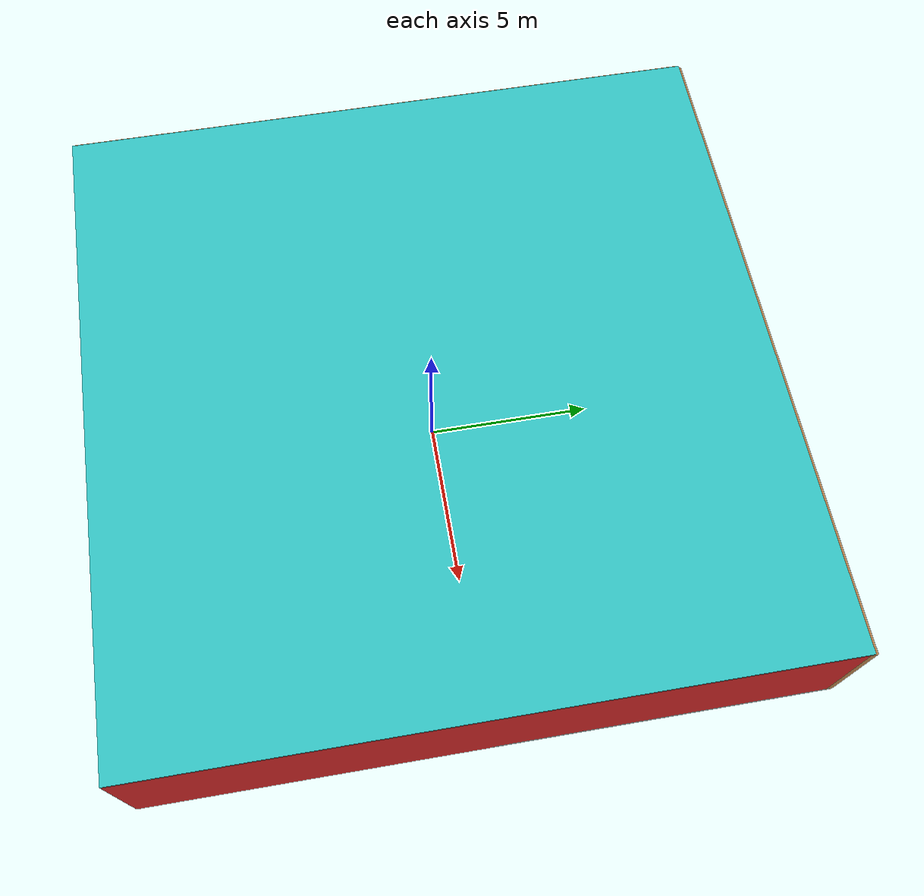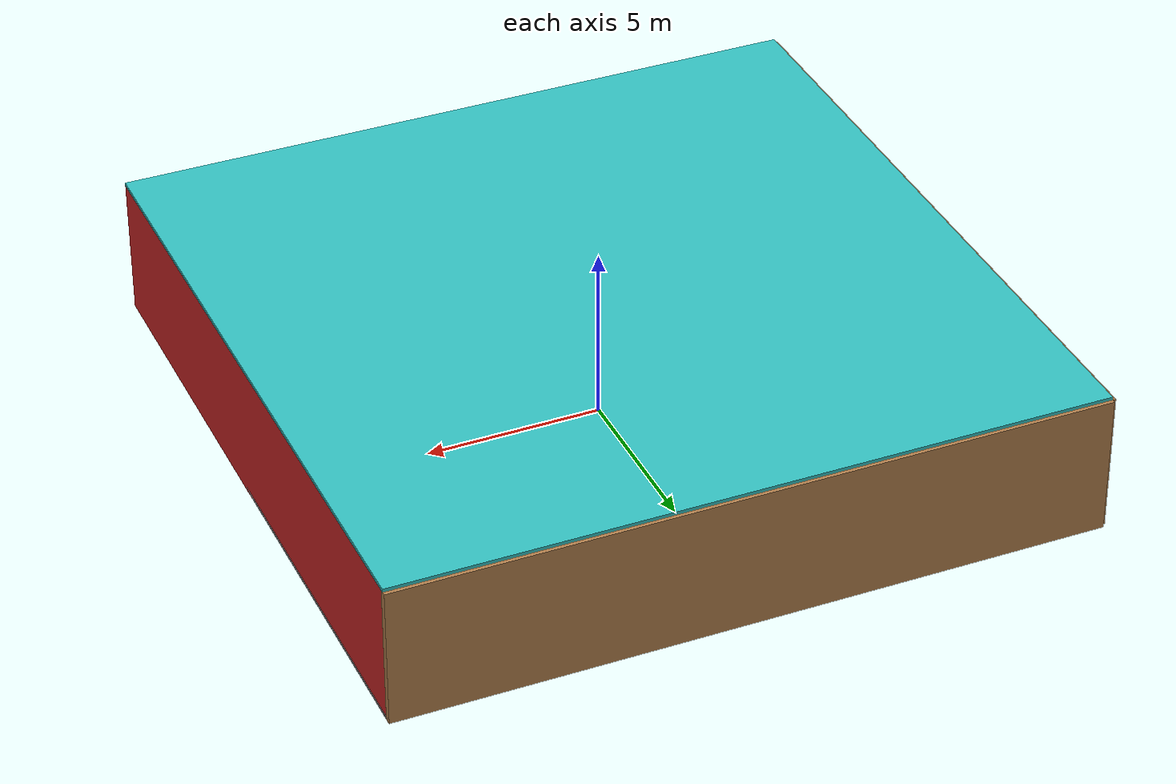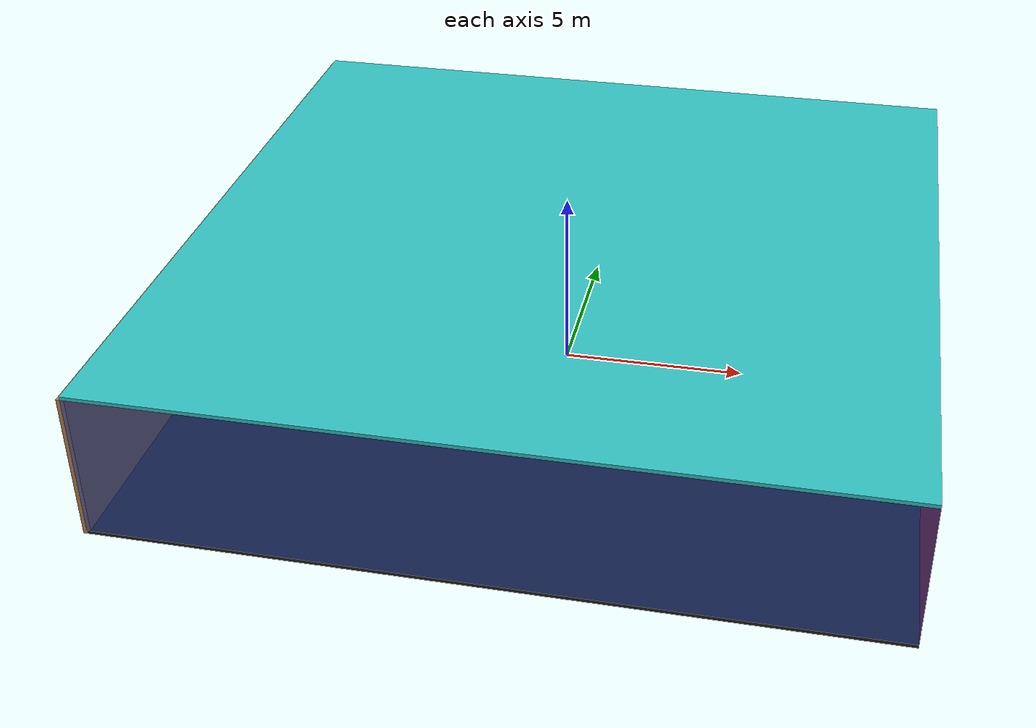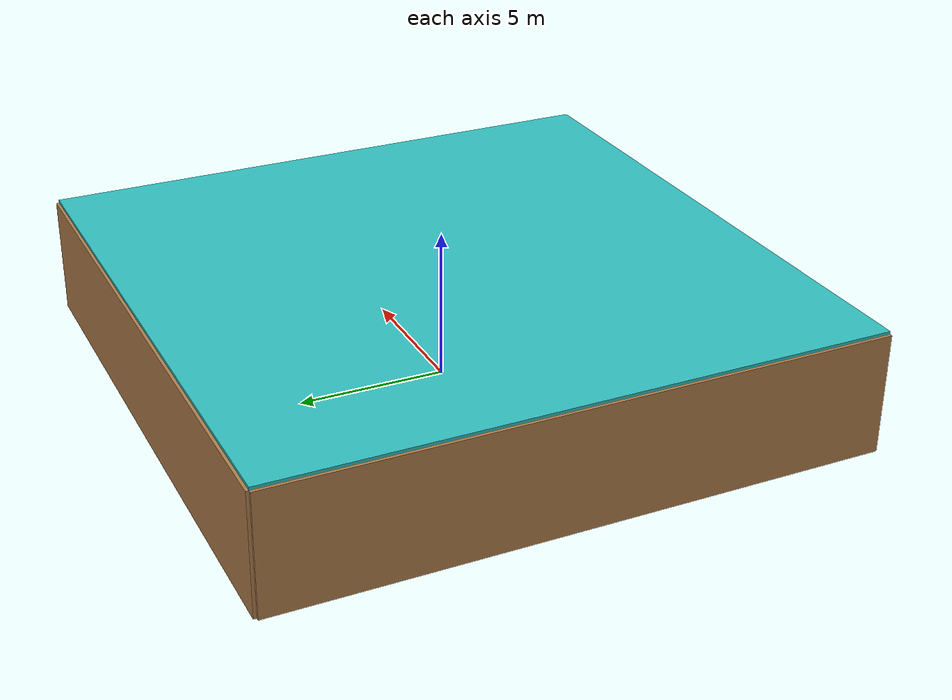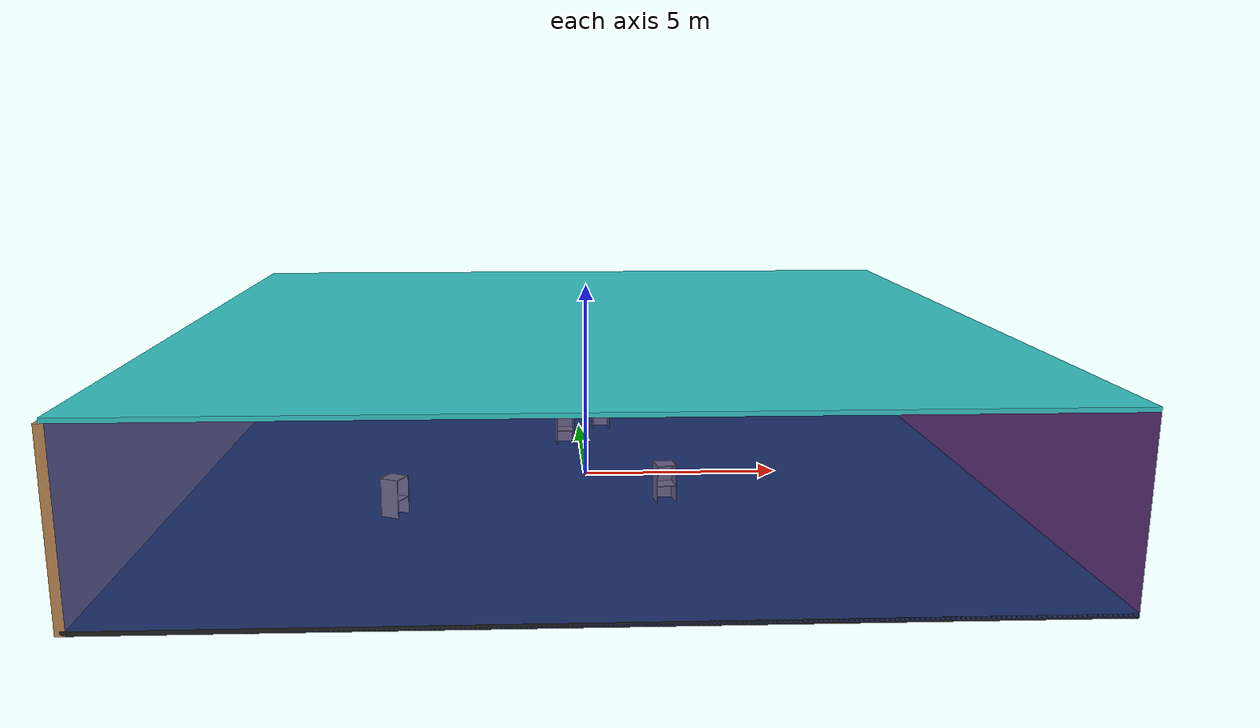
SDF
<sdf version="1.4">
 <world name="default">
  <physics type="ode">
   <max_step_size>0.001</max_step_size>
   <real_time_factor>1</real_time_factor>
   <real_time_update_rate>1000</real_time_update_rate>
   <gravity>0 0 -9.8</gravity>
  </physics>
  <scene><ambient>0.4 0.4 0.4 1</ambient><background>0.7 0.7 0.7 1</background><shadows>1</shadows></scene>
  <model name="Surrounding">
   <static>1</static>
   <link name="Ceiling">
    <collision name="Ceiling_Collision"><geometry><box><size>20 20 0.1</size></box></geometry></collision>
    <visual name="Ceiling_Visual">
     <geometry><box><size>20 20 0.1</size></box></geometry>
     <material>
      <script>
       <uri>file://media/materials/scripts/gazebo.material</uri>
       <name>Gazebo/TurquoiseGlowOutline</name>
      </script>
     </material>
    </visual>
    <pose>0 0 4.05 0 0 0</pose>
   </link>
   <link name="Wall_South">
    <collision name="Wall_South_Collision">
     <geometry><box><size>20 0 4</size></box></geometry>
     <pose>0 0 2 0 -0 0</pose>
    </collision>
    <visual name="Wall_South_Visual">
     <pose>0 0 2 0 -0 0</pose>
     <geometry><box><size>20 0 4</size></box></geometry>
     <material>
      <script><uri>file://media/materials/scripts/gazebo.material</uri><name>Gazebo/BlueTransparent</name></script>
     </material>
    </visual>
    <velocity_decay><linear>0</linear><angular>0</angular></velocity_decay>
    <pose>0 -10 0 0 -0 0</pose>
   </link>
   <link name="Wall_East">
    <collision name="Wall_21_Collision">
     <geometry><box><size>20 0 4</size></box></geometry>
     <pose>0 0 2 0 -0 0</pose>
    </collision>
    <visual name="Wall_21_Visual">
     <pose>0 0 2 0 -0 0</pose>
     <geometry><box><size>20 0 4</size></box></geometry>
     <material>
      <script><uri>file://media/materials/scripts/gazebo.material</uri><name>Gazebo/RedBright</name></script>
     </material>
    </visual>
    <velocity_decay><linear>0</linear><angular>0</angular></velocity_decay>
    <pose>10 0 0 0 -0 1.5708</pose>
   </link>
   <link name="Wall_North">
    <collision name="Wall_22_Collision">
     <geometry><box><size>20 0.2 4</size></box></geometry>
     <pose>0 0 2 0 -0 0</pose>
    </collision>
    <visual name="Wall_22_Visual">
     <pose>0 0 2 0 -0 0</pose>
     <geometry><box><size>20 0.2 4</size></box></geometry>
     <material>
      <script><uri>file://media/materials/scripts/gazebo.material</uri><name>Gazebo/Wood</name></script>
     </material>
    </visual>
    <velocity_decay><linear>0</linear><angular>0</angular></velocity_decay>
    <pose>0 10 0 0 -0 0</pose>
   </link>
   <link name="Wall_West">
    <collision name="Wall_23_Collision">
     <geometry><box><size>20 0.2 4</size></box></geometry>
     <pose>0 0 2 0 -0 0</pose>
    </collision>
    <visual name="Wall_23_Visual">
     <pose>0 0 2 0 -0 0</pose>
     <geometry><box><size>20 0.2 4</size></box></geometry>
     <material>
      <script><uri>file://media/materials/scripts/gazebo.material</uri><name>Gazebo/WoodPallet</name></script>
     </material>
    </visual>
    <velocity_decay><linear>0</linear><angular>0</angular></velocity_decay>
    <pose>-10 0 0 0 0 -1.5708</pose>
   </link>
   <link name="Ground_link">
    <collision name="collision">
     <pose>0 0 .05 0 -0 0</pose>
     <geometry><box><size>20 20 0.1</size></box></geometry>
    </collision>
    <visual name="visual">
     <pose>0 0 .05 0 -0 0</pose>
     <geometry><box><size>20 20 0.1</size></box></geometry>
     <material>
      <script><uri>file://media/materials/scripts/gazebo.material</uri><name>Gazebo/Black</name></script>
     </material>
    </visual>
   </link>
   <static>1</static>
  </model>
  <spherical_coordinates>
   <surface_model>EARTH_WGS84</surface_model>
   <latitude_deg>0</latitude_deg>
   <longitude_deg>0</longitude_deg>
   <elevation>0</elevation>
   <heading_deg>0</heading_deg>
  </spherical_coordinates>
  <light name="lightball_0" type="diffuse">
   <diffuse>0.8 0.8 0.8 1</diffuse>
   <specular>0.2 0.2 0.2 1</specular>
   <attenuation>
    <range>100</range>
    <constant>0.7</constant>
    <linear>0.01</linear>
    <quadratic>0.001</quadratic>
   </attenuation>
   <direction>-0.5 0.1 -0.9</direction>
   <pose>-6.02458306243 7.19798073958 2.94011992903 0 0 0</pose>
  </light>
  <light name="lightball_1" type="diffuse">
   <diffuse>0.8 0.8 0.8 1</diffuse>
   <specular>0.2 0.2 0.2 1</specular>
   <attenuation>
    <range>100</range>
    <constant>0.7</constant>
    <linear>0.01</linear>
    <quadratic>0.001</quadratic>
   </attenuation>
   <direction>-0.5 0.1 -0.9</direction>
   <pose>3.46013109189 2.18694740471 2.95347221586 0 0 0</pose>
  </light>
  <light name="lightball_2" type="diffuse">
   <diffuse>0.8 0.8 0.8 1</diffuse>
   <specular>0.2 0.2 0.2 1</specular>
   <attenuation>
    <range>100</range>
    <constant>0.7</constant>
    <linear>0.01</linear>
    <quadratic>0.001</quadratic>
   </attenuation>
   <direction>-0.5 0.1 -0.9</direction>
   <pose>-1.11334804072 8.970526256 2.74374571732 0 0 0</pose>
  </light>
  <light name="lightball_3" type="diffuse">
   <diffuse>0.8 0.8 0.8 1</diffuse>
   <specular>0.2 0.2 0.2 1</specular>
   <attenuation>
    <range>100</range>
    <constant>0.7</constant>
    <linear>0.01</linear>
    <quadratic>0.001</quadratic>
   </attenuation>
   <direction>-0.5 0.1 -0.9</direction>
   <pose>4.23982785147 5.12186365055 3.60240375336 0 0 0</pose>
  </light>
  <light name="lightball_4" type="diffuse">
   <diffuse>0.8 0.8 0.8 1</diffuse>
   <specular>0.2 0.2 0.2 1</specular>
   <attenuation>
    <range>100</range>
    <constant>0.7</constant>
    <linear>0.01</linear>
    <quadratic>0.001</quadratic>
   </attenuation>
   <direction>-0.5 0.1 -0.9</direction>
   <pose>4.28029077806 6.11653555146 3.65194592766 0 0 0</pose>
  </light>
  <light name="lightball_5" type="diffuse">
   <diffuse>0.8 0.8 0.8 1</diffuse>
   <specular>0.2 0.2 0.2 1</specular>
   <attenuation>
    <range>100</range>
    <constant>0.7</constant>
    <linear>0.01</linear>
    <quadratic>0.001</quadratic>
   </attenuation>
   <direction>-0.5 0.1 -0.9</direction>
   <pose>6.14328009644 -3.8252274141 2.28070879932 0 0 0</pose>
  </light>
  <include>
   <uri>model://robocup_3Dsim_goal</uri>
   <pose>-6.60967806291 6.49587461499 0 0 0 2.36951631517</pose>
  </include>
  <include><uri>model://cabinet</uri><pose>-4.62609760634 -3.56526098175 0 0 0 2.69250114454</pose></include>
  <include><uri>model://cabinet</uri><pose>-0.486859483025 2.69279450933 0 0 0 1.65684043101</pose></include>
  <include><uri>model://cabinet</uri><pose>1.79727264441 -2.69260569522 0 0 0 1.70198502942</pose></include>
  <include><uri>model://cabinet</uri><pose>0.629986748504 4.49964894093 0 0 0 1.62156263433</pose></include>
 </world>
</sdf>

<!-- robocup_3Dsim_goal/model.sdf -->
<sdf version="1.5">
  <model name="robocup_3d_goal">
    <static>true</static>
    <link name="left_post">
      <pose>0 1.05 0.45 0 0 0</pose>
      <collision name="collision">
        <geometry>
          <cylinder>
            <radius>0.05</radius>
            <length>0.9</length>
          </cylinder>
        </geometry>
      </collision>
      <visual name="visual">
        <geometry>
          <cylinder>
            <radius>0.05</radius>
            <length>0.9</length>
          </cylinder>
        </geometry>
        <material>
          <script>
            <uri>file://media/materials/scripts/gazebo.material</uri>
            <name>Gazebo/ZincYellow</name>
          </script>
        </material>
      </visual>
    </link>
    <link name="left_support_horiz_lower">
      <pose>0.30 1.05 0.01 0 0 0</pose>
      <collision name="collision">
        <geometry>
          <box>
            <size>0.50 0.02 0.02</size>
          </box>
        </geometry>
      </collision>
      <visual name="visual">
        <geometry>
          <box>
            <size>0.50 0.02 0.02</size>
          </box>
        </geometry>
        <material>
          <script>
            <uri>file://media/materials/scripts/gazebo.material</uri>
            <name>Gazebo/White</name>
          </script>
        </material>
      </visual>
    </link>
    <link name="left_support_horiz_upper">
      <pose>0.30 1.05 0.79 0 0 0</pose>
      <collision name="collision">
        <geometry>
          <box>
            <size>0.50 0.02 0.02</size>
          </box>
        </geometry>
      </collision>
      <visual name="visual">
        <geometry>
          <box>
            <size>0.50 0.02 0.02</size>
          </box>
        </geometry>
        <material>
          <script>
            <uri>file://media/materials/scripts/gazebo.material</uri>
            <name>Gazebo/White</name>
          </script>
        </material>
      </visual>
    </link>
    <link name="left_support_vertical">
      <pose>0.56 1.05 0.4 0 1.5708 0</pose>
      <collision name="collision">
        <geometry>
          <box>
            <size>0.80 0.02 0.02</size>
          </box>
        </geometry>
      </collision>
      <visual name="visual">
        <geometry>
          <box>
            <size>0.80 0.02 0.02</size>
          </box>
        </geometry>
        <material>
          <script>
            <uri>file://media/materials/scripts/gazebo.material</uri>
            <name>Gazebo/White</name>
          </script>
        </material>
      </visual>
    </link>
    <link name="right_support_horiz_lower">
      <pose>0.30 -1.05 0.01 0 0 0</pose>
      <collision name="collision">
        <geometry>
          <box>
            <size>0.50 0.02 0.02</size>
          </box>
        </geometry>
      </collision>
      <visual name="visual">
        <geometry>
          <box>
            <size>0.50 0.02 0.02</size>
          </box>
        </geometry>
        <material>
          <script>
            <uri>file://media/materials/scripts/gazebo.material</uri>
            <name>Gazebo/White</name>
          </script>
        </material>
      </visual>
    </link>
    <link name="right_support_horiz_upper">
      <pose>0.30 -1.05 0.79 0 0 0</pose>
      <collision name="collision">
        <geometry>
          <box>
            <size>0.50 0.02 0.02</size>
          </box>
        </geometry>
      </collision>
      <visual name="visual">
        <geometry>
          <box>
            <size>0.50 0.02 0.02</size>
          </box>
        </geometry>
        <material>
          <script>
            <uri>file://media/materials/scripts/gazebo.material</uri>
            <name>Gazebo/White</name>
          </script>
        </material>
      </visual>
    </link>
    <link name="right_support_vertical">
      <pose>0.56 -1.05 0.4 0 1.5708 0</pose>
      <collision name="collision">
        <geometry>
          <box>
            <size>0.80 0.02 0.02</size>
          </box>
        </geometry>
      </collision>
      <visual name="visual">
        <geometry>
          <box>
            <size>0.80 0.02 0.02</size>
          </box>
        </geometry>
        <material>
          <script>
            <uri>file://media/materials/scripts/gazebo.material</uri>
            <name>Gazebo/White</name>
          </script>
        </material>
      </visual>
    </link>
    <link name="center_support_horiz_lower">
      <pose>0.56 0 0.01 0 1.5708 0</pose>
      <collision name="collision">
        <geometry>
          <box>
            <size>0.02 2.08 0.02</size>
          </box>
        </geometry>
      </collision>
      <visual name="visual">
        <geometry>
          <box>
            <size>0.02 2.08 0.02</size>
          </box>
        </geometry>
        <material>
          <script>
            <uri>file://media/materials/scripts/gazebo.material</uri>
            <name>Gazebo/White</name>
          </script>
        </material>
      </visual>
    </link>
    <link name="center_support_horiz_upper">
      <pose>0.56 0 0.79 0 1.5708 0</pose>
      <collision name="collision">
        <geometry>
          <box>
            <size>0.02 2.08 0.02</size>
          </box>
        </geometry>
      </collision>
      <visual name="visual">
        <geometry>
          <box>
            <size>0.02 2.08 0.02</size>
          </box>
        </geometry>
        <material>
          <script>
            <uri>file://media/materials/scripts/gazebo.material</uri>
            <name>Gazebo/White</name>
          </script>
        </material>
      </visual>
    </link>
    <link name="right_post">
      <pose>0 -1.05 0.45 0 0 0</pose>
      <collision name="collision">
        <geometry>
          <cylinder>
            <radius>0.05</radius>
            <length>0.9</length>
          </cylinder>
        </geometry>
      </collision>
      <visual name="visual">
        <geometry>
          <cylinder>
            <radius>0.05</radius>
            <length>0.9</length>
          </cylinder>
        </geometry>
        <material>
          <script>
            <uri>file://media/materials/scripts/gazebo.material</uri>
            <name>Gazebo/ZincYellow</name>
          </script>
        </material>
      </visual>
    </link>
    <link name="crossbar">
      <pose>0 0 0.85 1.57 1.57 0</pose>
      <collision name="collision">
        <geometry>
          <cylinder>
            <radius>0.05</radius>
            <length>2.0</length>
          </cylinder>
        </geometry>
      </collision>
      <visual name="visual">
        <geometry>
          <cylinder>
            <radius>0.05</radius>
            <length>2.0</length>
          </cylinder>
        </geometry>
        <material>
          <script>
            <uri>file://media/materials/scripts/gazebo.material</uri>
            <name>Gazebo/ZincYellow</name>
          </script>
        </material>
      </visual>
    </link>
    <link name="center_net">
      <pose>0.56 0 0.40 0 0 0</pose>
      <collision name="collision">
        <geometry>
          <box>
            <size>0.01 2.1 0.80</size>
          </box>
        </geometry>
      </collision>
      <visual name="visual">
        <geometry>
          <box>
            <size>0.01 2.1 0.80</size>
          </box>
        </geometry>
        <material>
          <script>
            <uri>model://../model_source/models/robocup09_spl_field/materials/scripts/</uri>
            <uri>model://../model_source/models/robocup09_spl_field/materials/textures/</uri>
            <name>RoboCup/Net</name>
          </script>
        </material>
      </visual>
    </link>
    <link name="left_net">
      <pose>0.30 1.05 0.40 0 0 0</pose>
      <collision name="collision">
        <geometry>
          <box>
            <size>0.50 0.01 0.76</size>
          </box>
        </geometry>
      </collision>
      <visual name="visual">
        <geometry>
          <box>
            <size>0.50 0.01 0.76</size>
          </box>
        </geometry>
        <material>
          <script>
            <uri>model://../model_source/models/robocup09_spl_field/materials/scripts/</uri>
            <uri>model://../model_source/models/robocup09_spl_field/materials/textures/</uri>
            <name>RoboCup/Net</name>
          </script>
        </material>
      </visual>
    </link>
    <link name="right_net">
      <pose>0.30 -1.05 0.40 0 0 0</pose>
      <collision name="collision">
        <geometry>
          <box>
            <size>0.50 0.01 0.76</size>
          </box>
        </geometry>
      </collision>
      <visual name="visual">
        <geometry>
          <box>
            <size>0.50 0.01 0.76</size>
          </box>
        </geometry>
        <material>
          <script>
            <uri>model://../model_source/models/robocup09_spl_field/materials/scripts/</uri>
            <uri>model://../model_source/models/robocup09_spl_field/materials/textures/</uri>
            <name>RoboCup/Net</name>
          </script>
        </material>
      </visual>
    </link>
  </model>
</sdf>

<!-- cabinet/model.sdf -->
<sdf version="1.5">
  <model name="cabinet">
    <static>true</static>
    <link name="cabinet_bottom_plate">
      <inertial>
        <pose>0 0 -1 0 0 0</pose>
        <inertia>
          <ixx>2.050000</ixx>
          <ixy>0</ixy>
          <ixz>0</ixz>
          <iyy>2.050000</iyy>
          <iyz>0</iyz>
          <izz>2.050000</izz>
        </inertia>
        <mass>25.000000</mass>
      </inertial>
      <collision name="cabinet_bottom_plate_geom">
        <pose>0 0 0.010000 0 0 0</pose>
        <geometry>
          <box>
            <size>0.450000 0.450000 0.020000</size>
          </box>
        </geometry>
      </collision>
      <visual name="cabinet_bottom_plate_geom_visual">
        <pose>0 0 0.010000 0 0 0</pose>
        <geometry>
          <box>
            <size>0.450000 0.450000 0.020000</size>
          </box>
        </geometry>
        <material>
          <script>
            <uri>model://media/materials/scripts/gazebo.material</uri>
            <name>Gazebo/Wood</name>
          </script>
        </material>
      </visual>
      <collision name="cabinet_bottom_plate_geom_cabinet_back_plate">
        <pose>0.235000 0 0.510000 0 0 0</pose>
        <geometry>
          <box>
            <size>0.020000 0.450000 1.020000</size>
          </box>
        </geometry>
      </collision>
      <visual name="cabinet_bottom_plate_geom_cabinet_back_plate_visual">
        <pose>0.235000 0 0.510000 0 0 0</pose>
        <geometry>
          <box>
            <size>0.020000 0.450000 1.020000</size>
          </box>
        </geometry>
        <material>
          <script>
            <uri>model://media/materials/scripts/gazebo.material</uri>
            <name>Gazebo/Wood</name>
          </script>
        </material>
      </visual>
      <collision name="cabinet_bottom_plate_geom_cabinet_left_plate">
        <pose>0 0.235000 0.510000 0 0 0</pose>
        <geometry>
          <box>
            <size>0.450000 0.020000 1.020000</size>
          </box>
        </geometry>
      </collision>
      <visual name="cabinet_bottom_plate_geom_cabinet_left_plate_visual">
        <pose>0 0.235000 0.510000 0 0 0</pose>
        <geometry>
          <box>
            <size>0.450000 0.020000 1.020000</size>
          </box>
        </geometry>
        <material>
          <script>
            <uri>model://media/materials/scripts/gazebo.material</uri>
            <name>Gazebo/Wood</name>
          </script>
        </material>
      </visual>
      <collision name="cabinet_bottom_plate_geom_cabinet_middle_plate">
        <pose>0 0 0.510000 0 0 0</pose>
        <geometry>
          <box>
            <size>0.450000 0.450000 0.020000</size>
          </box>
        </geometry>
      </collision>
      <visual name="cabinet_bottom_plate_geom_cabinet_middle_plate_visual">
        <pose>0 0 0.510000 0 0 0</pose>
        <geometry>
          <box>
            <size>0.450000 0.450000 0.020000</size>
          </box>
        </geometry>
        <material>
          <script>
            <uri>model://media/materials/scripts/gazebo.material</uri>
            <name>Gazebo/Wood</name>
          </script>
        </material>
      </visual>
      <collision name="cabinet_bottom_plate_geom_cabinet_right_plate">
        <pose>0 -0.235000 0.510000 0 0 0</pose>
        <geometry>
          <box>
            <size>0.450000 0.020000 1.020000</size>
          </box>
        </geometry>
      </collision>
      <visual name="cabinet_bottom_plate_geom_cabinet_right_plate_visual">
        <pose>0 -0.235000 0.510000 0 0 0</pose>
        <geometry>
          <box>
            <size>0.450000 0.020000 1.020000</size>
          </box>
        </geometry>
        <material>
          <script>
            <uri>model://media/materials/scripts/gazebo.material</uri>
            <name>Gazebo/Wood</name>
          </script>
        </material>
      </visual>
      <collision name="cabinet_bottom_plate_geom_cabinet_top_plate">
        <pose>0 0 1.010000 0 0 0</pose>
        <geometry>
          <box>
            <size>0.450000 0.450000 0.020000</size>
          </box>
        </geometry>
      </collision>
      <visual name="cabinet_bottom_plate_geom_cabinet_top_plate_visual">
        <pose>0 0 1.010000 0 0 0</pose>
        <geometry>
          <box>
            <size>0.450000 0.450000 0.020000</size>
          </box>
        </geometry>
        <material>
          <script>
            <uri>model://media/materials/scripts/gazebo.material</uri>
            <name>Gazebo/Wood</name>
          </script>
        </material>
      </visual>
    </link>
  </model>
</sdf>
